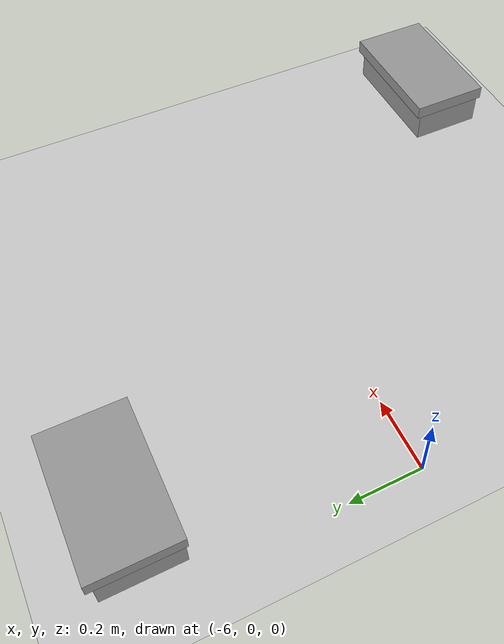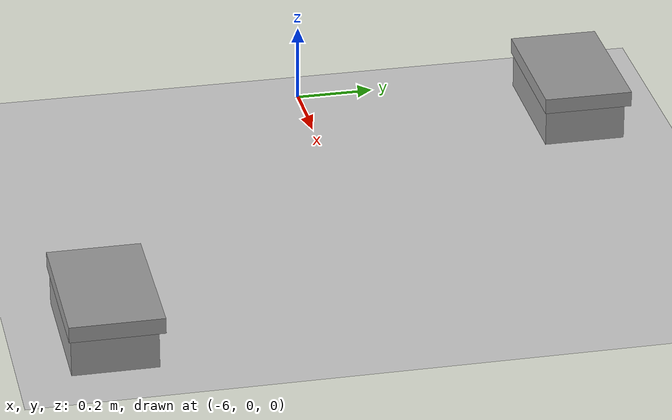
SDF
<sdf version="1.6">
 <world name="default">
  <model name="ground_plane">
   <static>1</static>
   <link name="link">
    <collision name="collision">
     <geometry><plane><normal>0 0 1</normal><size>100 100</size></plane></geometry>
     <surface><friction><ode><mu>100</mu><mu2>50</mu2></ode></friction></surface>
    </collision>
    <visual name="visual">
     <cast_shadows>0</cast_shadows>
     <geometry><plane><normal>0 0 1</normal><size>100 100</size></plane></geometry>
     <material>
      <script><uri>file://media/materials/scripts/gazebo.material</uri><name>Gazebo/Grey</name></script>
     </material>
    </visual>
   </link>
  </model>
  <model name="shoebox_1">
   <link name="link_0">
    <pose>0 -0.00025 0.0625 0 -0 0</pose>
    <inertial>
     <mass>1</mass>
     <inertia>
      <ixx>0.166667</ixx>
      <ixy>0</ixy>
      <ixz>0</ixz>
      <iyy>0.166667</iyy>
      <iyz>0</iyz>
      <izz>0.166667</izz>
     </inertia>
    </inertial>
    <visual name="visual">
     <geometry><box><size>0.36 0.21 0.135</size></box></geometry>
     <material>
      <lighting>1</lighting>
      <script><uri>file://media/materials/scripts/gazebo.material</uri><name>Gazebo/Grey</name></script>
      <shader type="pixel"><normal_map>__default__</normal_map></shader>
      <ambient>0.3 0.3 0.3 1</ambient>
      <diffuse>0.7 0.7 0.7 1</diffuse>
      <specular>0.01 0.01 0.01 1</specular>
      <emissive>0 0 0 1</emissive>
     </material>
    </visual>
    <collision name="collision">
     <geometry><box><size>0.36 0.21 0.135</size></box></geometry>
     <surface>
      <friction>
       <ode><mu>1</mu><mu2>1</mu2><fdir1>0 0 0</fdir1><slip1>0</slip1><slip2>0</slip2></ode>
       <torsional>
        <coefficient>1</coefficient>
        <patch_radius>0</patch_radius>
        <surface_radius>0</surface_radius>
        <use_patch_radius>1</use_patch_radius>
        <ode><slip>0</slip></ode>
       </torsional>
      </friction>
      <bounce><restitution_coefficient>0</restitution_coefficient><threshold>1e+06</threshold></bounce>
      <contact>
       <collide_without_contact>0</collide_without_contact>
       <collide_without_contact_bitmask>1</collide_without_contact_bitmask>
       <collide_bitmask>1</collide_bitmask>
       <ode>
        <soft_cfm>0</soft_cfm>
        <soft_erp>0.2</soft_erp>
        <kp>1e+13</kp>
        <kd>1</kd>
        <max_vel>0.01</max_vel>
        <min_depth>0</min_depth>
       </ode>
       <bullet>
        <split_impulse>1</split_impulse>
        <split_impulse_penetration_threshold>-0.01</split_impulse_penetration_threshold>
        <soft_cfm>0</soft_cfm>
        <soft_erp>0.2</soft_erp>
        <kp>1e+13</kp>
        <kd>1</kd>
       </bullet>
      </contact>
     </surface>
    </collision>
   </link>
   <link name="link_1">
    <pose>0 0.00525 0.1125 0 -0 0</pose>
    <inertial>
     <mass>1</mass>
     <inertia>
      <ixx>0.166667</ixx>
      <ixy>0</ixy>
      <ixz>0</ixz>
      <iyy>0.166667</iyy>
      <iyz>0</iyz>
      <izz>0.166667</izz>
     </inertia>
    </inertial>
    <visual name="visual">
     <geometry><box><size>0.38 0.23 0.04</size></box></geometry>
     <material>
      <lighting>1</lighting>
      <script><uri>file://media/materials/scripts/gazebo.material</uri><name>Gazebo/Grey</name></script>
      <shader type="pixel"><normal_map>__default__</normal_map></shader>
      <ambient>0.3 0.3 0.3 1</ambient>
      <diffuse>0.7 0.7 0.7 1</diffuse>
      <specular>0.01 0.01 0.01 1</specular>
      <emissive>0 0 0 1</emissive>
     </material>
    </visual>
    <collision name="collision">
     <geometry><box><size>0.38 0.23 0.04</size></box></geometry>
     <surface>
      <friction>
       <ode><mu>1</mu><mu2>1</mu2><fdir1>0 0 0</fdir1><slip1>0</slip1><slip2>0</slip2></ode>
       <torsional>
        <coefficient>1</coefficient>
        <patch_radius>0</patch_radius>
        <surface_radius>0</surface_radius>
        <use_patch_radius>1</use_patch_radius>
        <ode><slip>0</slip></ode>
       </torsional>
      </friction>
      <bounce><restitution_coefficient>0</restitution_coefficient><threshold>1e+06</threshold></bounce>
      <contact>
       <collide_without_contact>0</collide_without_contact>
       <collide_without_contact_bitmask>1</collide_without_contact_bitmask>
       <collide_bitmask>1</collide_bitmask>
       <ode>
        <soft_cfm>0</soft_cfm>
        <soft_erp>0.2</soft_erp>
        <kp>1e+13</kp>
        <kd>1</kd>
        <max_vel>0.01</max_vel>
        <min_depth>0</min_depth>
       </ode>
       <bullet>
        <split_impulse>1</split_impulse>
        <split_impulse_penetration_threshold>-0.01</split_impulse_penetration_threshold>
        <soft_cfm>0</soft_cfm>
        <soft_erp>0.2</soft_erp>
        <kp>1e+13</kp>
        <kd>1</kd>
       </bullet>
      </contact>
     </surface>
    </collision>
   </link>
   <joint name="link_0_JOINT_1" type="fixed">
    <parent>link_0</parent>
    <child>link_1</child>
    <physics>
     <ode><limit><cfm>0</cfm><erp>0.2</erp></limit><suspension><cfm>0</cfm><erp>0.2</erp></suspension></ode>
    </physics>
   </joint>
   <static>1</static>
   <pose>-4.82836 -0.697815 0 0 -0 0</pose>
  </model>
  <model name="shoebox_2">
   <link name="link_0">
    <pose>0 -0.00025 0.0625 0 -0 0</pose>
    <inertial>
     <mass>1</mass>
     <inertia>
      <ixx>0.166667</ixx>
      <ixy>0</ixy>
      <ixz>0</ixz>
      <iyy>0.166667</iyy>
      <iyz>0</iyz>
      <izz>0.166667</izz>
     </inertia>
    </inertial>
    <visual name="visual">
     <geometry><box><size>0.36 0.21 0.135</size></box></geometry>
     <material>
      <lighting>1</lighting>
      <script><uri>file://media/materials/scripts/gazebo.material</uri><name>Gazebo/Grey</name></script>
      <shader type="pixel"><normal_map>__default__</normal_map></shader>
      <ambient>0.3 0.3 0.3 1</ambient>
      <diffuse>0.7 0.7 0.7 1</diffuse>
      <specular>0.01 0.01 0.01 1</specular>
      <emissive>0 0 0 1</emissive>
     </material>
    </visual>
    <collision name="collision">
     <geometry><box><size>0.36 0.21 0.135</size></box></geometry>
     <surface>
      <friction>
       <ode><mu>1</mu><mu2>1</mu2><fdir1>0 0 0</fdir1><slip1>0</slip1><slip2>0</slip2></ode>
       <torsional>
        <coefficient>1</coefficient>
        <patch_radius>0</patch_radius>
        <surface_radius>0</surface_radius>
        <use_patch_radius>1</use_patch_radius>
        <ode><slip>0</slip></ode>
       </torsional>
      </friction>
      <bounce><restitution_coefficient>0</restitution_coefficient><threshold>1e+06</threshold></bounce>
      <contact>
       <collide_without_contact>0</collide_without_contact>
       <collide_without_contact_bitmask>1</collide_without_contact_bitmask>
       <collide_bitmask>1</collide_bitmask>
       <ode>
        <soft_cfm>0</soft_cfm>
        <soft_erp>0.2</soft_erp>
        <kp>1e+13</kp>
        <kd>1</kd>
        <max_vel>0.01</max_vel>
        <min_depth>0</min_depth>
       </ode>
       <bullet>
        <split_impulse>1</split_impulse>
        <split_impulse_penetration_threshold>-0.01</split_impulse_penetration_threshold>
        <soft_cfm>0</soft_cfm>
        <soft_erp>0.2</soft_erp>
        <kp>1e+13</kp>
        <kd>1</kd>
       </bullet>
      </contact>
     </surface>
    </collision>
   </link>
   <link name="link_1">
    <pose>0 0.00525 0.1125 0 -0 0</pose>
    <inertial>
     <mass>1</mass>
     <inertia>
      <ixx>0.166667</ixx>
      <ixy>0</ixy>
      <ixz>0</ixz>
      <iyy>0.166667</iyy>
      <iyz>0</iyz>
      <izz>0.166667</izz>
     </inertia>
    </inertial>
    <visual name="visual">
     <geometry><box><size>0.38 0.23 0.04</size></box></geometry>
     <material>
      <lighting>1</lighting>
      <script><uri>file://media/materials/scripts/gazebo.material</uri><name>Gazebo/Grey</name></script>
      <shader type="pixel"><normal_map>__default__</normal_map></shader>
      <ambient>0.3 0.3 0.3 1</ambient>
      <diffuse>0.7 0.7 0.7 1</diffuse>
      <specular>0.01 0.01 0.01 1</specular>
      <emissive>0 0 0 1</emissive>
     </material>
    </visual>
    <collision name="collision">
     <geometry><box><size>0.38 0.23 0.04</size></box></geometry>
     <surface>
      <friction>
       <ode><mu>1</mu><mu2>1</mu2><fdir1>0 0 0</fdir1><slip1>0</slip1><slip2>0</slip2></ode>
       <torsional>
        <coefficient>1</coefficient>
        <patch_radius>0</patch_radius>
        <surface_radius>0</surface_radius>
        <use_patch_radius>1</use_patch_radius>
        <ode><slip>0</slip></ode>
       </torsional>
      </friction>
      <bounce><restitution_coefficient>0</restitution_coefficient><threshold>1e+06</threshold></bounce>
      <contact>
       <collide_without_contact>0</collide_without_contact>
       <collide_without_contact_bitmask>1</collide_without_contact_bitmask>
       <collide_bitmask>1</collide_bitmask>
       <ode>
        <soft_cfm>0</soft_cfm>
        <soft_erp>0.2</soft_erp>
        <kp>1e+13</kp>
        <kd>1</kd>
        <max_vel>0.01</max_vel>
        <min_depth>0</min_depth>
       </ode>
       <bullet>
        <split_impulse>1</split_impulse>
        <split_impulse_penetration_threshold>-0.01</split_impulse_penetration_threshold>
        <soft_cfm>0</soft_cfm>
        <soft_erp>0.2</soft_erp>
        <kp>1e+13</kp>
        <kd>1</kd>
       </bullet>
      </contact>
     </surface>
    </collision>
   </link>
   <joint name="link_0_JOINT_1" type="fixed">
    <parent>link_0</parent>
    <child>link_1</child>
    <physics>
     <ode><limit><cfm>0</cfm><erp>0.2</erp></limit><suspension><cfm>0</cfm><erp>0.2</erp></suspension></ode>
    </physics>
   </joint>
   <static>1</static>
   <pose>-5.77576 0.683975 0 0 -0 0</pose>
  </model>
 </world>
</sdf>
